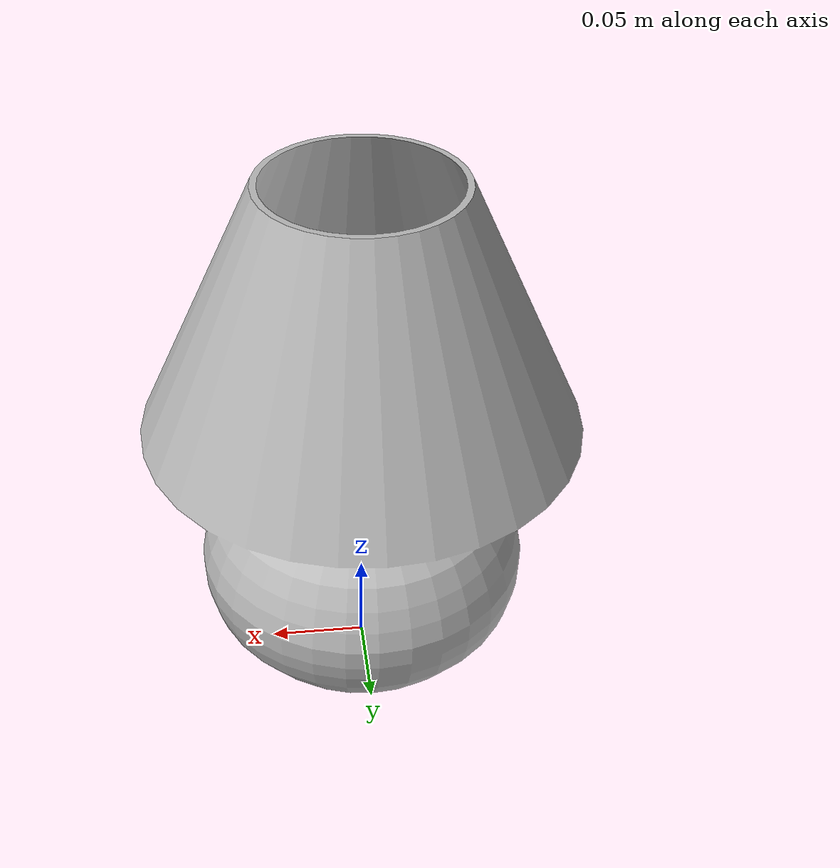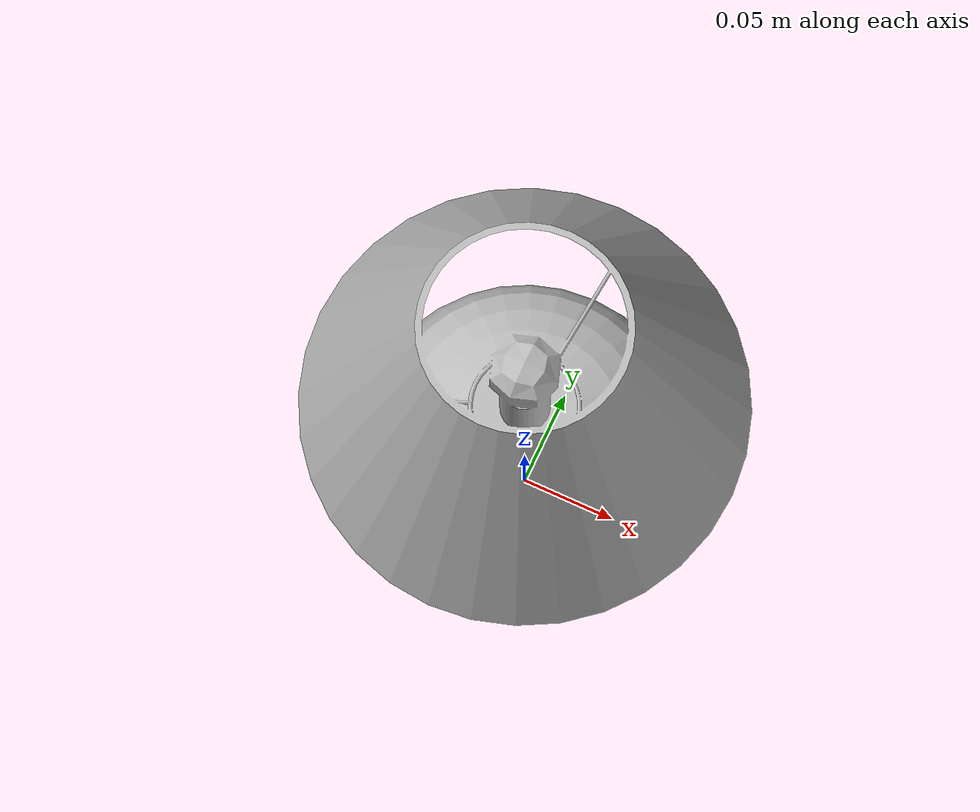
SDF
<?xml version='1.0'?>
<sdf version='1.4'>
  <model name='421'>
    <pose>0 0 0 0 0 0</pose>
    <static>true</static>
    <link name='link'>
      <collision name='collision'>
        <pose>0 0 0 0 0 0</pose>
        <geometry>
          <box>
            <size>0.219854 0.219854 2</size>
          </box>
        </geometry>
      </collision>
      <visual name='visual'>
        <pose>0 0 0 0 0 0</pose>
        <geometry>
          <mesh><uri>model://421/421.dae</uri></mesh>
        </geometry>
      </visual>
    </link>
  </model>
</sdf>
